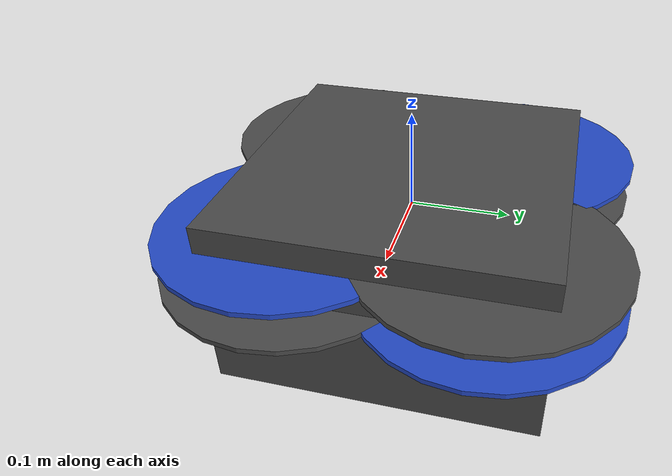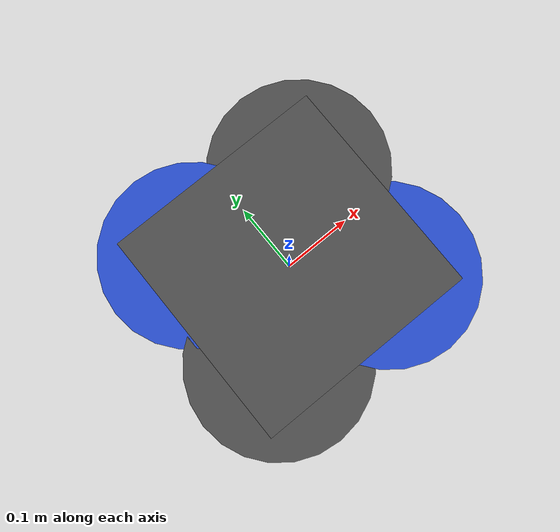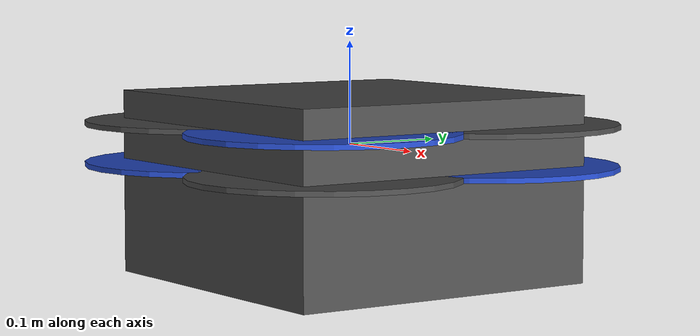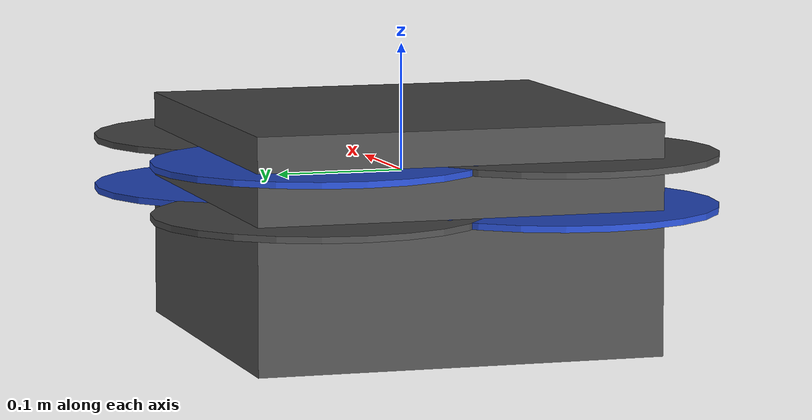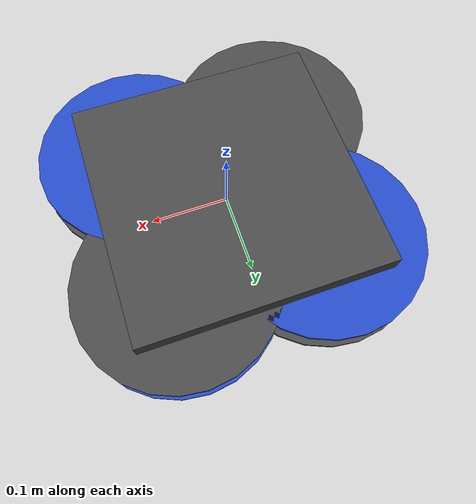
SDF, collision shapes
<sdf version='1.5'>
  <model name='octo_cox_tlab'>
    <!-- Saga E350T frame -->
    <link name='base_link'>
      <pose>0 0 0 0 0 0</pose>
      <inertial>
        <pose>0 0 0 0 0 0</pose>
        <mass>1.47</mass>
        <inertia>
          <ixx>0.011</ixx>
          <ixy>0</ixy>
          <ixz>0</ixz>
          <iyy>0.015</iyy>
          <iyz>0</iyz>
          <izz>0.021</izz>
        </inertia>
      </inertial>
      <collision name='base_link_inertia_collision'>
        <pose>0 0 -0.04 0 0 0</pose>
        <geometry>
          <box>
            <size>0.32 0.32 0.18</size>
          </box>
        </geometry>
        <surface>
          <contact>
            <ode>
              <min_depth>0.001</min_depth>
              <max_vel>0</max_vel>
            </ode>
          </contact>
          <friction>
            <ode/>
          </friction>
        </surface>
      </collision>
      <visual name='base_link_inertia_visual'>
        <pose>0 0 0 1.5708 0 1.5708</pose>
        <geometry>
          <mesh>
            <scale>0.0006 0.0006 0.0006</scale>
            <uri>model://octo_cox_tlab/meshes/saga_e350t.stl</uri>
          </mesh>
        </geometry>
        <material>
          <script>
            <name>Gazebo/DarkGrey</name>
            <uri>file://media/materials/scripts/gazebo.material</uri>
          </script>
        </material>
      </visual>
      <gravity>1</gravity>
      <velocity_decay/>
      <self_collide>0</self_collide>
    </link>
    <link name='imu_link'>
      <pose>0 0 0 0 0 0</pose>
      <inertial>
        <pose>0 0 0 0 0 0</pose>
        <mass>0.015</mass>
        <inertia>
          <ixx>1e-05</ixx>
          <ixy>0</ixy>
          <ixz>0</ixz>
          <iyy>1e-05</iyy>
          <iyz>0</iyz>
          <izz>1e-05</izz>
        </inertia>
      </inertial>
    </link>
    <joint name='imu_joint' type='revolute'>
      <child>imu_link</child>
      <parent>base_link</parent>
      <axis>
        <xyz>1 0 0</xyz>
        <limit>
          <lower>0</lower>
          <upper>0</upper>
          <effort>0</effort>
          <velocity>0</velocity>
        </limit>
        <dynamics>
          <spring_reference>0</spring_reference>
          <spring_stiffness>0</spring_stiffness>
        </dynamics>
        <use_parent_model_frame>1</use_parent_model_frame>
      </axis>
    </joint>
    <link name='rotor_0'>
      <pose>0.094 -0.094 0.02 0 0 0</pose>
      <inertial>
        <pose>0 0 0 0 0 0</pose>
        <mass>0.005</mass>
        <inertia>
          <ixx>9.75e-07</ixx>
          <ixy>0</ixy>
          <ixz>0</ixz>
          <iyy>0.000273104</iyy>
          <iyz>0</iyz>
          <izz>0.000274004</izz>
        </inertia>
      </inertial>
      <collision name='rotor_0_collision'>
        <pose>0 0 0 0 0 0</pose>
        <geometry>
          <cylinder>
            <length>0.005</length>
            <radius>0.128</radius>
          </cylinder>
        </geometry>
        <surface>
          <contact>
            <ode/>
          </contact>
          <friction>
            <ode/>
          </friction>
        </surface>
      </collision>
      <visual name='rotor_0_visual'>
        <pose>-0.002578 0.002578 0 1.5708 0 0</pose>
        <geometry>
          <mesh>
            <scale>0.0006 0.0006 0.0006</scale>
            <uri>model://octo_cox_tlab/meshes/prop.stl</uri>
          </mesh>
        </geometry>
        <material>
          <script>
            <name>Gazebo/Blue</name>
            <uri>file://media/materials/scripts/gazebo.material</uri>
          </script>
        </material>
      </visual>
      <gravity>1</gravity>
      <velocity_decay/>
      <self_collide>0</self_collide>
    </link>
    <joint name='rotor_0_joint' type='revolute'>
      <child>rotor_0</child>
      <parent>base_link</parent>
      <axis>
        <xyz>0 0 1</xyz>
        <limit>
          <lower>-1e+16</lower>
          <upper>1e+16</upper>
        </limit>
        <dynamics>
          <spring_reference>0</spring_reference>
          <spring_stiffness>0</spring_stiffness>
        </dynamics>
        <use_parent_model_frame>1</use_parent_model_frame>
      </axis>
    </joint>
    <link name='rotor_1'>
      <pose>0.094 0.094 0.02 0 0 0</pose>
      <inertial>
        <pose>0 0 0 0 0 0</pose>
        <mass>0.005</mass>
        <inertia>
          <ixx>9.75e-07</ixx>
          <ixy>0</ixy>
          <ixz>0</ixz>
          <iyy>0.000273104</iyy>
          <iyz>0</iyz>
          <izz>0.000274004</izz>
        </inertia>
      </inertial>
      <collision name='rotor_1_collision'>
        <pose>0 0 0 0 0 0</pose>
        <geometry>
          <cylinder>
            <length>0.005</length>
            <radius>0.128</radius>
          </cylinder>
        </geometry>
        <surface>
          <contact>
            <ode/>
          </contact>
          <friction>
            <ode/>
          </friction>
        </surface>
      </collision>
      <visual name='rotor_1_visual'>
        <pose>-0.002578 0.002578 0 1.5708 0 0</pose>
        <geometry>
          <mesh>
            <scale>0.0006 0.0006 0.0006</scale>
            <uri>model://octo_cox_tlab/meshes/prop.stl</uri>
          </mesh>
        </geometry>
        <material>
          <script>
            <name>Gazebo/DarkGrey</name>
            <uri>file://media/materials/scripts/gazebo.material</uri>
          </script>
        </material>
      </visual>
      <gravity>1</gravity>
      <velocity_decay/>
      <self_collide>0</self_collide>
    </link>
    <joint name='rotor_1_joint' type='revolute'>
      <child>rotor_1</child>
      <parent>base_link</parent>
      <axis>
        <xyz>0 0 1</xyz>
        <limit>
          <lower>-1e+16</lower>
          <upper>1e+16</upper>
        </limit>
        <dynamics>
          <spring_reference>0</spring_reference>
          <spring_stiffness>0</spring_stiffness>
        </dynamics>
        <use_parent_model_frame>1</use_parent_model_frame>
      </axis>
    </joint>
    <link name='rotor_2'>
      <pose>-0.094 0.094 0.02 0 0 0</pose>
      <inertial>
        <pose>0 0 0 0 0 0</pose>
        <mass>0.005</mass>
        <inertia>
          <ixx>9.75e-07</ixx>
          <ixy>0</ixy>
          <ixz>0</ixz>
          <iyy>0.000273104</iyy>
          <iyz>0</iyz>
          <izz>0.000274004</izz>
        </inertia>
      </inertial>
      <collision name='rotor_2_collision'>
        <pose>0 0 0 0 0 0</pose>
        <geometry>
          <cylinder>
            <length>0.005</length>
            <radius>0.128</radius>
          </cylinder>
        </geometry>
        <surface>
          <contact>
            <ode/>
          </contact>
          <friction>
            <ode/>
          </friction>
        </surface>
      </collision>
      <visual name='rotor_2_visual'>
        <pose>-0.002578 0.002578 0 1.5708 0 0</pose>
        <geometry>
          <mesh>
            <scale>0.0006 0.0006 0.0006</scale>
            <uri>model://octo_cox_tlab/meshes/prop.stl</uri>
          </mesh>
        </geometry>
        <material>
          <script>
            <name>Gazebo/Blue</name>
            <uri>file://media/materials/scripts/gazebo.material</uri>
          </script>
        </material>
      </visual>
      <gravity>1</gravity>
      <velocity_decay/>
      <self_collide>0</self_collide>
    </link>
    <joint name='rotor_2_joint' type='revolute'>
      <child>rotor_2</child>
      <parent>base_link</parent>
      <axis>
        <xyz>0 0 1</xyz>
        <limit>
          <lower>-1e+16</lower>
          <upper>1e+16</upper>
        </limit>
        <dynamics>
          <spring_reference>0</spring_reference>
          <spring_stiffness>0</spring_stiffness>
        </dynamics>
        <use_parent_model_frame>1</use_parent_model_frame>
      </axis>
    </joint>
    <link name='rotor_3'>
      <pose>-0.094 -0.094 0.02 0 0 0</pose>
      <inertial>
        <pose>0 0 0 0 0 0</pose>
        <mass>0.005</mass>
        <inertia>
          <ixx>9.75e-07</ixx>
          <ixy>0</ixy>
          <ixz>0</ixz>
          <iyy>0.000273104</iyy>
          <iyz>0</iyz>
          <izz>0.000274004</izz>
        </inertia>
      </inertial>
      <collision name='rotor_3_collision'>
        <pose>0 0 0 0 0 0</pose>
        <geometry>
          <cylinder>
            <length>0.005</length>
            <radius>0.128</radius>
          </cylinder>
        </geometry>
        <surface>
          <contact>
            <ode/>
          </contact>
          <friction>
            <ode/>
          </friction>
        </surface>
      </collision>
      <visual name='rotor_3_visual'>
        <pose>-0.002578 0.002578 0 1.5708 0 0</pose>
        <geometry>
          <mesh>
            <scale>0.0006 0.0006 0.0006</scale>
            <uri>model://octo_cox_tlab/meshes/prop.stl</uri>
          </mesh>
        </geometry>
        <material>
          <script>
            <name>Gazebo/DarkGrey</name>
            <uri>file://media/materials/scripts/gazebo.material</uri>
          </script>
        </material>
      </visual>
      <gravity>1</gravity>
      <velocity_decay/>
      <self_collide>0</self_collide>
    </link>
    <joint name='rotor_3_joint' type='revolute'>
      <child>rotor_3</child>
      <parent>base_link</parent>
      <axis>
        <xyz>0 0 1</xyz>
        <limit>
          <lower>-1e+16</lower>
          <upper>1e+16</upper>
        </limit>
        <dynamics>
          <spring_reference>0</spring_reference>
          <spring_stiffness>0</spring_stiffness>
        </dynamics>
        <use_parent_model_frame>1</use_parent_model_frame>
      </axis>
    </joint>
    <link name='rotor_4'>
      <pose>0.094 0.094 -0.02 0 0 0</pose>
      <inertial>
        <pose>0 0 0 0 0 0</pose>
        <mass>0.005</mass>
        <inertia>
          <ixx>9.75e-07</ixx>
          <ixy>0</ixy>
          <ixz>0</ixz>
          <iyy>0.000273104</iyy>
          <iyz>0</iyz>
          <izz>0.000274004</izz>
        </inertia>
      </inertial>
      <collision name='rotor_4_collision'>
        <pose>0 0 0 0 0 0</pose>
        <geometry>
          <cylinder>
            <length>0.005</length>
            <radius>0.128</radius>
          </cylinder>
        </geometry>
        <surface>
          <contact>
            <ode/>
          </contact>
          <friction>
            <ode/>
          </friction>
        </surface>
      </collision>
      <visual name='rotor_4_visual'>
        <pose>-0.002578 0.002578 0 1.5708 0 0</pose>
        <geometry>
          <mesh>
            <scale>0.0006 0.0006 0.0006</scale>
            <uri>model://octo_cox_tlab/meshes/prop.stl</uri>
          </mesh>
        </geometry>
        <material>
          <script>
            <name>Gazebo/Blue</name>
            <uri>file://media/materials/scripts/gazebo.material</uri>
          </script>
        </material>
      </visual>
      <gravity>1</gravity>
      <velocity_decay/>
      <self_collide>0</self_collide>
    </link>
    <joint name='rotor_4_joint' type='revolute'>
      <child>rotor_4</child>
      <parent>base_link</parent>
      <axis>
        <xyz>0 0 1</xyz>
        <limit>
          <lower>-1e+16</lower>
          <upper>1e+16</upper>
        </limit>
        <dynamics>
          <spring_reference>0</spring_reference>
          <spring_stiffness>0</spring_stiffness>
        </dynamics>
        <use_parent_model_frame>1</use_parent_model_frame>
      </axis>
    </joint>
    <link name='rotor_5'>
      <pose>0.094 -0.094 -0.02 0 0 0</pose>
      <inertial>
        <pose>0 0 0 0 0 0</pose>
        <mass>0.005</mass>
        <inertia>
          <ixx>9.75e-07</ixx>
          <ixy>0</ixy>
          <ixz>0</ixz>
          <iyy>0.000273104</iyy>
          <iyz>0</iyz>
          <izz>0.000274004</izz>
        </inertia>
      </inertial>
      <collision name='rotor_5_collision'>
        <pose>0 0 0 0 0 0</pose>
        <geometry>
          <cylinder>
            <length>0.005</length>
            <radius>0.128</radius>
          </cylinder>
        </geometry>
        <surface>
          <contact>
            <ode/>
          </contact>
          <friction>
            <ode/>
          </friction>
        </surface>
      </collision>
      <visual name='rotor_5_visual'>
        <pose>-0.002578 0.002578 0 1.5708 0 0</pose>
        <geometry>
          <mesh>
            <scale>0.0006 0.0006 0.0006</scale>
            <uri>model://octo_cox_tlab/meshes/prop.stl</uri>
          </mesh>
        </geometry>
        <material>
          <script>
            <name>Gazebo/DarkGrey</name>
            <uri>file://media/materials/scripts/gazebo.material</uri>
          </script>
        </material>
      </visual>
      <gravity>1</gravity>
      <velocity_decay/>
      <self_collide>0</self_collide>
    </link>
    <joint name='rotor_5_joint' type='revolute'>
      <child>rotor_5</child>
      <parent>base_link</parent>
      <axis>
        <xyz>0 0 1</xyz>
        <limit>
          <lower>-1e+16</lower>
          <upper>1e+16</upper>
        </limit>
        <dynamics>
          <spring_reference>0</spring_reference>
          <spring_stiffness>0</spring_stiffness>
        </dynamics>
        <use_parent_model_frame>1</use_parent_model_frame>
      </axis>
    </joint>
    <link name='rotor_6'>
      <pose>-0.094 -0.094 -0.02 0 0 0</pose>
      <inertial>
        <pose>0 0 0 0 0 0</pose>
        <mass>0.005</mass>
        <inertia>
          <ixx>9.75e-07</ixx>
          <ixy>0</ixy>
          <ixz>0</ixz>
          <iyy>0.000273104</iyy>
          <iyz>0</iyz>
          <izz>0.000274004</izz>
        </inertia>
      </inertial>
      <collision name='rotor_6_collision'>
        <pose>0 0 0 0 0 0</pose>
        <geometry>
          <cylinder>
            <length>0.005</length>
            <radius>0.128</radius>
          </cylinder>
        </geometry>
        <surface>
          <contact>
            <ode/>
          </contact>
          <friction>
            <ode/>
          </friction>
        </surface>
      </collision>
      <visual name='rotor_6_visual'>
        <pose>-0.002578 0.002578 0 1.5708 0 0</pose>
        <geometry>
          <mesh>
            <scale>0.0006 0.0006 0.0006</scale>
            <uri>model://octo_cox_tlab/meshes/prop.stl</uri>
          </mesh>
        </geometry>
        <material>
          <script>
            <name>Gazebo/Blue</name>
            <uri>file://media/materials/scripts/gazebo.material</uri>
          </script>
        </material>
      </visual>
      <gravity>1</gravity>
      <velocity_decay/>
      <self_collide>0</self_collide>
    </link>
    <joint name='rotor_6_joint' type='revolute'>
      <child>rotor_6</child>
      <parent>base_link</parent>
      <axis>
        <xyz>0 0 1</xyz>
        <limit>
          <lower>-1e+16</lower>
          <upper>1e+16</upper>
        </limit>
        <dynamics>
          <spring_reference>0</spring_reference>
          <spring_stiffness>0</spring_stiffness>
        </dynamics>
        <use_parent_model_frame>1</use_parent_model_frame>
      </axis>
    </joint>
    <link name='rotor_7'>
      <pose>-0.094 0.094 -0.02 0 0 0</pose>
      <inertial>
        <pose>0 0 0 0 0 0</pose>
        <mass>0.005</mass>
        <inertia>
          <ixx>9.75e-07</ixx>
          <ixy>0</ixy>
          <ixz>0</ixz>
          <iyy>0.000273104</iyy>
          <iyz>0</iyz>
          <izz>0.000274004</izz>
        </inertia>
      </inertial>
      <collision name='rotor_7_collision'>
        <pose>0 0 0 0 0 0</pose>
        <geometry>
          <cylinder>
            <length>0.005</length>
            <radius>0.128</radius>
          </cylinder>
        </geometry>
        <surface>
          <contact>
            <ode/>
          </contact>
          <friction>
            <ode/>
          </friction>
        </surface>
      </collision>
      <visual name='rotor_7_visual'>
        <pose>-0.002578 0.002578 0 1.5708 0 0</pose>
        <geometry>
          <mesh>
            <scale>0.0006 0.0006 0.0006</scale>
            <uri>model://octo_cox_tlab/meshes/prop.stl</uri>
          </mesh>
        </geometry>
        <material>
          <script>
            <name>Gazebo/DarkGrey</name>
            <uri>file://media/materials/scripts/gazebo.material</uri>
          </script>
        </material>
      </visual>
      <gravity>1</gravity>
      <velocity_decay/>
      <self_collide>0</self_collide>
    </link>
    <joint name='rotor_7_joint' type='revolute'>
      <child>rotor_7</child>
      <parent>base_link</parent>
      <axis>
        <xyz>0 0 1</xyz>
        <limit>
          <lower>-1e+16</lower>
          <upper>1e+16</upper>
        </limit>
        <dynamics>
          <spring_reference>0</spring_reference>
          <spring_stiffness>0</spring_stiffness>
        </dynamics>
        <use_parent_model_frame>1</use_parent_model_frame>
      </axis>
    </joint>
    <plugin name='rosbag' filename='libgazebo_multirotor_base_plugin.so'>
      <robotNamespace></robotNamespace>
      <linkName>base_link</linkName>
      <rotorVelocitySlowdownSim>10</rotorVelocitySlowdownSim>
    </plugin>
    <plugin name='front_right_upper_motor_model' filename='libgazebo_motor_model.so'>
      <robotNamespace></robotNamespace>
      <jointName>rotor_0_joint</jointName>
      <linkName>rotor_0</linkName>
      <turningDirection>ccw</turningDirection>
      <timeConstantUp>0.0125</timeConstantUp>
      <timeConstantDown>0.025</timeConstantDown>
      <maxRotVelocity>1500</maxRotVelocity>
      <motorConstant>8.54858e-06</motorConstant>
      <momentConstant>0.06</momentConstant>
      <commandSubTopic>/gazebo/command/motor_speed</commandSubTopic>
      <motorNumber>0</motorNumber>
      <rotorDragCoefficient>0.000806428</rotorDragCoefficient>
      <rollingMomentCoefficient>1e-06</rollingMomentCoefficient>
      <motorSpeedPubTopic>/motor_speed/0</motorSpeedPubTopic>
      <rotorVelocitySlowdownSim>10</rotorVelocitySlowdownSim>
    </plugin>
    <plugin name='front_left_upper_motor_model' filename='libgazebo_motor_model.so'>
      <robotNamespace></robotNamespace>
      <jointName>rotor_1_joint</jointName>
      <linkName>rotor_1</linkName>
      <turningDirection>cw</turningDirection>
      <timeConstantUp>0.0125</timeConstantUp>
      <timeConstantDown>0.025</timeConstantDown>
      <maxRotVelocity>1500</maxRotVelocity>
      <motorConstant>8.54858e-06</motorConstant>
      <momentConstant>0.06</momentConstant>
      <commandSubTopic>/gazebo/command/motor_speed</commandSubTopic>
      <motorNumber>2</motorNumber>
      <rotorDragCoefficient>0.000806428</rotorDragCoefficient>
      <rollingMomentCoefficient>1e-06</rollingMomentCoefficient>
      <motorSpeedPubTopic>/motor_speed/2</motorSpeedPubTopic>
      <rotorVelocitySlowdownSim>10</rotorVelocitySlowdownSim>
    </plugin>
    <plugin name='back_left_upper_motor_model' filename='libgazebo_motor_model.so'>
      <robotNamespace></robotNamespace>
      <jointName>rotor_2_joint</jointName>
      <linkName>rotor_2</linkName>
      <turningDirection>ccw</turningDirection>
      <timeConstantUp>0.0125</timeConstantUp>
      <timeConstantDown>0.025</timeConstantDown>
      <maxRotVelocity>1500</maxRotVelocity>
      <motorConstant>8.54858e-06</motorConstant>
      <momentConstant>0.06</momentConstant>
      <commandSubTopic>/gazebo/command/motor_speed</commandSubTopic>
      <motorNumber>1</motorNumber>
      <rotorDragCoefficient>0.000806428</rotorDragCoefficient>
      <rollingMomentCoefficient>1e-06</rollingMomentCoefficient>
      <motorSpeedPubTopic>/motor_speed/1</motorSpeedPubTopic>
      <rotorVelocitySlowdownSim>10</rotorVelocitySlowdownSim>
    </plugin>
    <plugin name='back_right_upper_motor_model' filename='libgazebo_motor_model.so'>
      <robotNamespace></robotNamespace>
      <jointName>rotor_3_joint</jointName>
      <linkName>rotor_3</linkName>
      <turningDirection>cw</turningDirection>
      <timeConstantUp>0.0125</timeConstantUp>
      <timeConstantDown>0.025</timeConstantDown>
      <maxRotVelocity>1500</maxRotVelocity>
      <motorConstant>8.54858e-06</motorConstant>
      <momentConstant>0.06</momentConstant>
      <commandSubTopic>/gazebo/command/motor_speed</commandSubTopic>
      <motorNumber>3</motorNumber>
      <rotorDragCoefficient>0.000806428</rotorDragCoefficient>
      <rollingMomentCoefficient>1e-06</rollingMomentCoefficient>
      <motorSpeedPubTopic>/motor_speed/3</motorSpeedPubTopic>
      <rotorVelocitySlowdownSim>10</rotorVelocitySlowdownSim>
    </plugin>
    <plugin name='front_left_lower_motor_model' filename='libgazebo_motor_model.so'>
      <robotNamespace></robotNamespace>
      <jointName>rotor_4_joint</jointName>
      <linkName>rotor_4</linkName>
      <turningDirection>ccw</turningDirection>
      <timeConstantUp>0.0125</timeConstantUp>
      <timeConstantDown>0.025</timeConstantDown>
      <maxRotVelocity>1500</maxRotVelocity>
      <motorConstant>8.54858e-06</motorConstant>
      <momentConstant>0.06</momentConstant>
      <commandSubTopic>/gazebo/command/motor_speed</commandSubTopic>
      <motorNumber>2</motorNumber>
      <rotorDragCoefficient>0.000806428</rotorDragCoefficient>
      <rollingMomentCoefficient>1e-06</rollingMomentCoefficient>
      <motorSpeedPubTopic>/motor_speed/2</motorSpeedPubTopic>
      <rotorVelocitySlowdownSim>10</rotorVelocitySlowdownSim>
    </plugin>
    <plugin name='front_right_lower_motor_model' filename='libgazebo_motor_model.so'>
      <robotNamespace></robotNamespace>
      <jointName>rotor_5_joint</jointName>
      <linkName>rotor_5</linkName>
      <turningDirection>cw</turningDirection>
      <timeConstantUp>0.0125</timeConstantUp>
      <timeConstantDown>0.025</timeConstantDown>
      <maxRotVelocity>1500</maxRotVelocity>
      <motorConstant>8.54858e-06</motorConstant>
      <momentConstant>0.06</momentConstant>
      <commandSubTopic>/gazebo/command/motor_speed</commandSubTopic>
      <motorNumber>0</motorNumber>
      <rotorDragCoefficient>0.000806428</rotorDragCoefficient>
      <rollingMomentCoefficient>1e-06</rollingMomentCoefficient>
      <motorSpeedPubTopic>/motor_speed/0</motorSpeedPubTopic>
      <rotorVelocitySlowdownSim>10</rotorVelocitySlowdownSim>
    </plugin>
    <plugin name='back_right_lower_motor_model' filename='libgazebo_motor_model.so'>
      <robotNamespace></robotNamespace>
      <jointName>rotor_6_joint</jointName>
      <linkName>rotor_6</linkName>
      <turningDirection>ccw</turningDirection>
      <timeConstantUp>0.0125</timeConstantUp>
      <timeConstantDown>0.025</timeConstantDown>
      <maxRotVelocity>1500</maxRotVelocity>
      <motorConstant>8.54858e-06</motorConstant>
      <momentConstant>0.06</momentConstant>
      <commandSubTopic>/gazebo/command/motor_speed</commandSubTopic>
      <motorNumber>3</motorNumber>
      <rotorDragCoefficient>0.000806428</rotorDragCoefficient>
      <rollingMomentCoefficient>1e-06</rollingMomentCoefficient>
      <motorSpeedPubTopic>/motor_speed/3</motorSpeedPubTopic>
      <rotorVelocitySlowdownSim>10</rotorVelocitySlowdownSim>
    </plugin>
    <plugin name='back_left_lower_motor_model' filename='libgazebo_motor_model.so'>
      <robotNamespace></robotNamespace>
      <jointName>rotor_7_joint</jointName>
      <linkName>rotor_7</linkName>
      <turningDirection>cw</turningDirection>
      <timeConstantUp>0.0125</timeConstantUp>
      <timeConstantDown>0.025</timeConstantDown>
      <maxRotVelocity>1500</maxRotVelocity>
      <motorConstant>8.54858e-06</motorConstant>
      <momentConstant>0.06</momentConstant>
      <commandSubTopic>/gazebo/command/motor_speed</commandSubTopic>
      <motorNumber>1</motorNumber>
      <rotorDragCoefficient>0.000806428</rotorDragCoefficient>
      <rollingMomentCoefficient>1e-06</rollingMomentCoefficient>
      <motorSpeedPubTopic>/motor_speed/1</motorSpeedPubTopic>
      <rotorVelocitySlowdownSim>10</rotorVelocitySlowdownSim>
    </plugin>
    <plugin name="gps_plugin" filename="libgazebo_gps_plugin.so">
        <robotNamespace></robotNamespace>
        <gpsNoise>true</gpsNoise>
    </plugin>
    <plugin name='magnetometer_plugin' filename='libgazebo_magnetometer_plugin.so'>
      <robotNamespace/>
      <pubRate>100</pubRate>
      <noiseDensity>0.0004</noiseDensity>
      <randomWalk>6.4e-06</randomWalk>
      <biasCorrelationTime>600</biasCorrelationTime>
      <magTopic>/mag</magTopic>
    </plugin>
    <plugin name='barometer_plugin' filename='libgazebo_barometer_plugin.so'>
      <robotNamespace/>
      <pubRate>50</pubRate>
      <baroTopic>/baro</baroTopic>
    </plugin>
    <plugin name='mavlink_interface' filename='libgazebo_mavlink_interface.so'>
      <robotNamespace/>
      <imuSubTopic>/imu</imuSubTopic>
      <gpsSubTopic>/gps</gpsSubTopic>
      <magSubTopic>/mag</magSubTopic>
      <baroSubTopic>/baro</baroSubTopic>
      <mavlink_addr>INADDR_ANY</mavlink_addr>
      <mavlink_udp_port>14560</mavlink_udp_port>
      <serialEnabled>false</serialEnabled>
      <serialDevice>/dev/ttyACM0</serialDevice>
      <baudRate>921600</baudRate>
      <qgc_addr>INADDR_ANY</qgc_addr>
      <qgc_udp_port>14550</qgc_udp_port>
      <hil_mode>false</hil_mode>
      <hil_state_level>false</hil_state_level>
      <enable_lockstep>true</enable_lockstep>
      <use_tcp>true</use_tcp>
      <motorSpeedCommandPubTopic>/gazebo/command/motor_speed</motorSpeedCommandPubTopic>
      <control_channels>
        <channel name='rotor1'>
          <input_index>0</input_index>
          <input_offset>0</input_offset>
          <input_scaling>1200</input_scaling>
          <zero_position_disarmed>0</zero_position_disarmed>
          <zero_position_armed>100</zero_position_armed>
          <joint_control_type>velocity</joint_control_type>
        </channel>
        <channel name='rotor2'>
          <input_index>1</input_index>
          <input_offset>0</input_offset>
          <input_scaling>1200</input_scaling>
          <zero_position_disarmed>0</zero_position_disarmed>
          <zero_position_armed>100</zero_position_armed>
          <joint_control_type>velocity</joint_control_type>
        </channel>
        <channel name='rotor3'>
          <input_index>2</input_index>
          <input_offset>0</input_offset>
          <input_scaling>1200</input_scaling>
          <zero_position_disarmed>0</zero_position_disarmed>
          <zero_position_armed>100</zero_position_armed>
          <joint_control_type>velocity</joint_control_type>
        </channel>
        <channel name='rotor4'>
          <input_index>3</input_index>
          <input_offset>0</input_offset>
          <input_scaling>1200</input_scaling>
          <zero_position_disarmed>0</zero_position_disarmed>
          <zero_position_armed>100</zero_position_armed>
          <joint_control_type>velocity</joint_control_type>
        </channel>
      </control_channels>
    </plugin>
    <static>0</static>
    <plugin name='gazebo_imu_plugin' filename='libgazebo_imu_plugin.so'>
      <robotNamespace></robotNamespace>
      <linkName>imu_link</linkName>
      <imuTopic>/imu</imuTopic>
      <gyroscopeNoiseDensity>0.0003394</gyroscopeNoiseDensity>
      <gyroscopeRandomWalk>3.8785e-05</gyroscopeRandomWalk>
      <gyroscopeBiasCorrelationTime>1000.0</gyroscopeBiasCorrelationTime>
      <gyroscopeTurnOnBiasSigma>0.0087</gyroscopeTurnOnBiasSigma>
      <accelerometerNoiseDensity>0.004</accelerometerNoiseDensity>
      <accelerometerRandomWalk>0.006</accelerometerRandomWalk>
      <accelerometerBiasCorrelationTime>300.0</accelerometerBiasCorrelationTime>
      <accelerometerTurnOnBiasSigma>0.196</accelerometerTurnOnBiasSigma>
    </plugin>
  </model>
</sdf>
